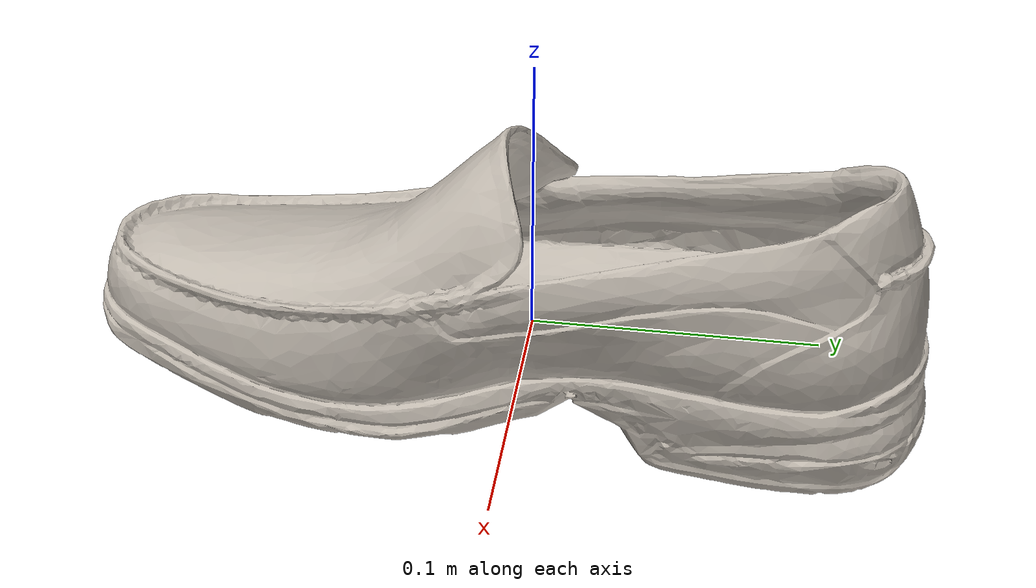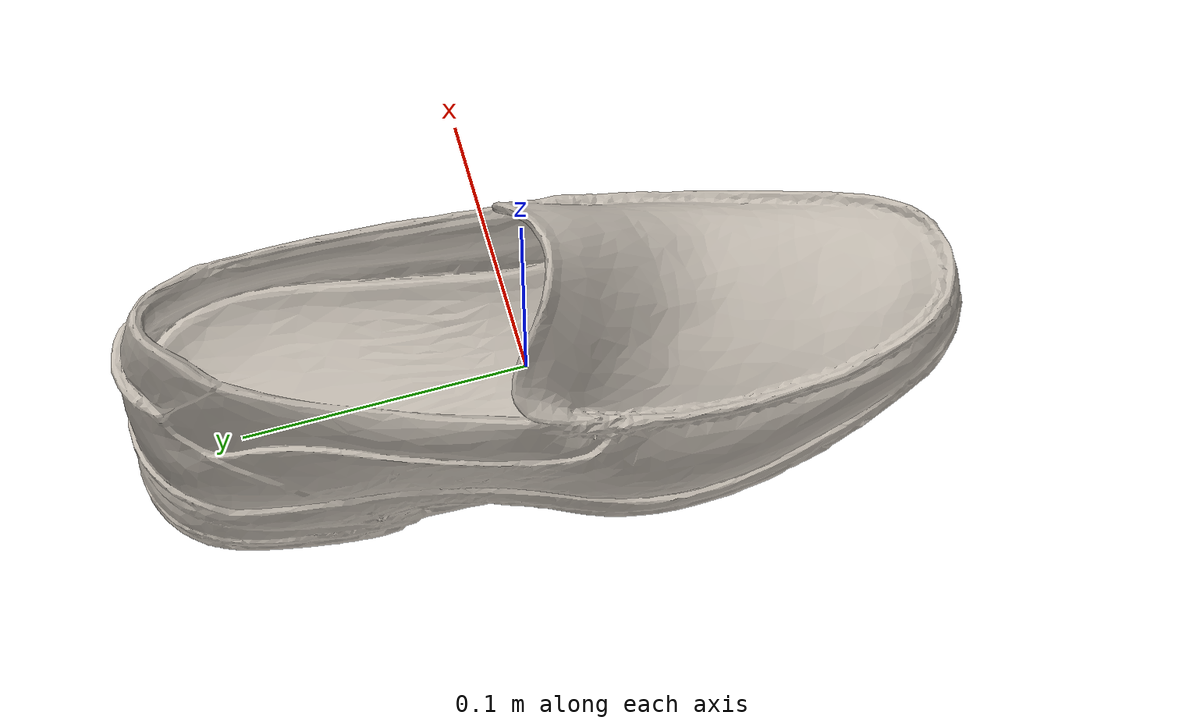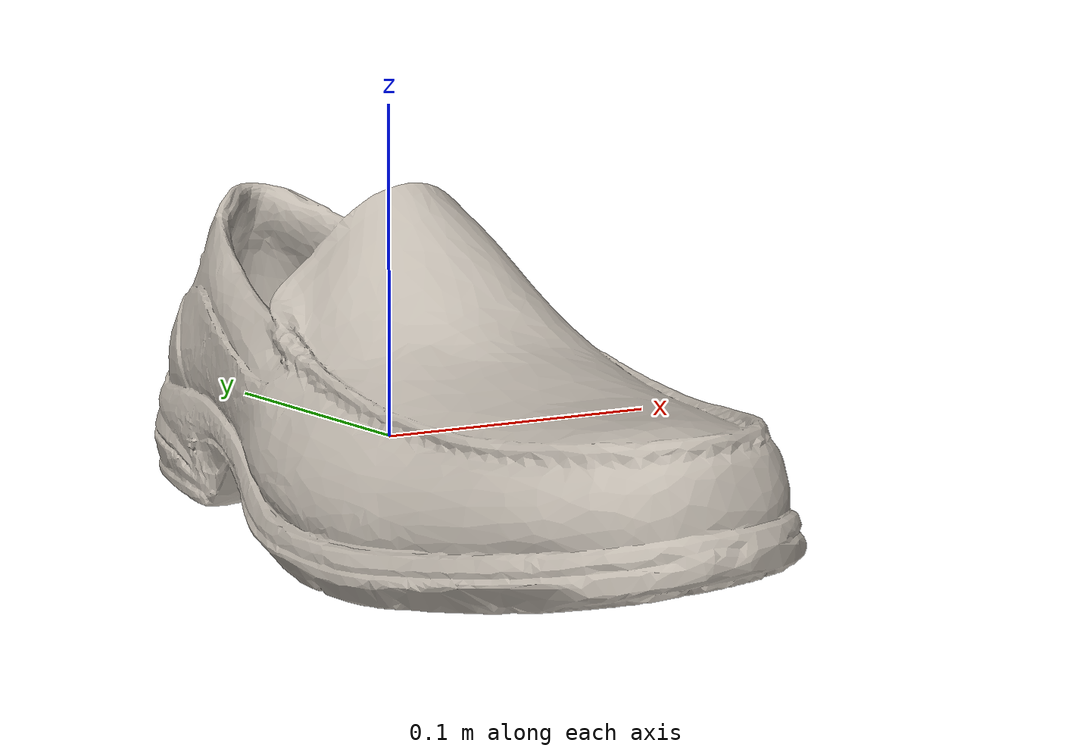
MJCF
<mujoco model="02">
  <default>
    <default class="02/visual">
      <geom group="2" type="mesh" contype="0" conaffinity="0"/>
    </default>
    <default class="02/collision">
      <geom group="3" type="mesh"/>
    </default>
  </default>
  <asset>
    <texture type="2d" name="img2" file="objects/02/img2.png"/>
    <material name="material_0.002" texture="img2" specular="0.0" shininess="0.0"/>
    <mesh file="objects/02/02.obj"/>
  </asset>
  <worldbody>
    <body name="02">
      <joint name="obj02" type="free"/>
      <geom material="material_0.002" mesh="02" class="02/visual"/>
      <geom mesh="02" class="02/collision" mass="0.5"/>
    </body>
  </worldbody>
</mujoco>
